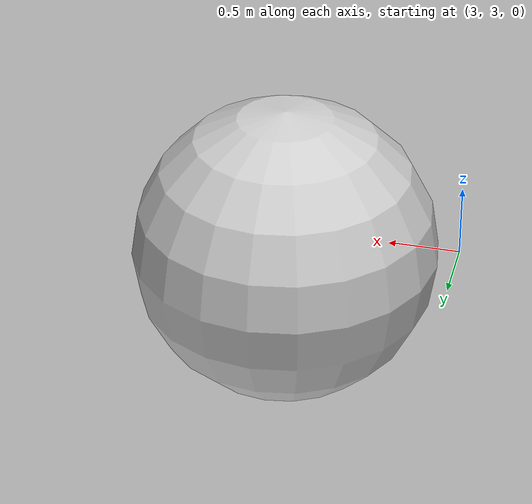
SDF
<?xml version='1.0' encoding='utf-8'?>
<sdf version="1.6">
  <model name="ellipsoid">
    <pose>4 4 0.5 0 0 0</pose>
    <static>true</static>
    <link name="link">
      <inertial>
        <mass>1.0</mass>
        <inertia>
          <ixx>0.083</ixx>
          <ixy>0.0</ixy>
          <ixz>0.0</ixz>
          <iyy>0.083</iyy>
          <iyz>0.0</iyz>
          <izz>0.083</izz>
        </inertia>
      </inertial>
      <collision name="collision">
        <geometry>
          <ellipsoid>
            <size>1 1 1</size>
          </ellipsoid>
        </geometry>
      </collision>
      <visual name="visual">
        <geometry>
          <ellipsoid>
            <size>1 1 1</size>
          </ellipsoid>
        </geometry>
        <material>
          <ambient>0.8 0.8 0.8 1</ambient>
          <diffuse>0.8 0.8 0.8 1</diffuse>
          <specular>0.8 0.8 0.8 1</specular>
        </material>
      </visual>
    </link>
  </model>
</sdf>
